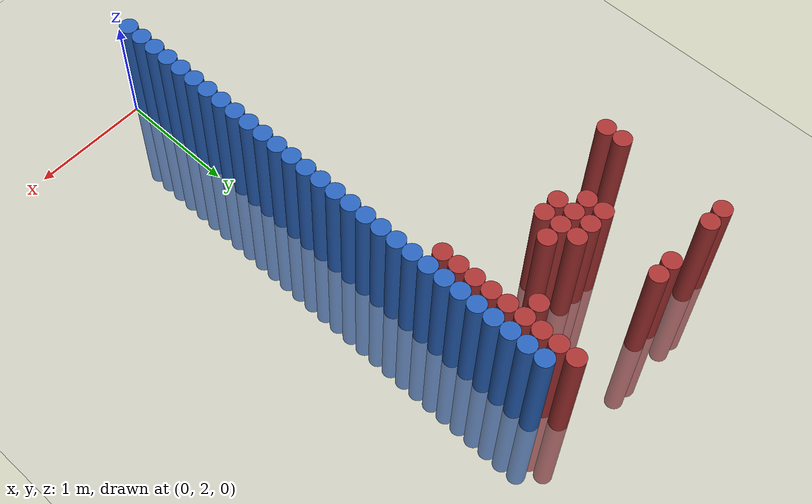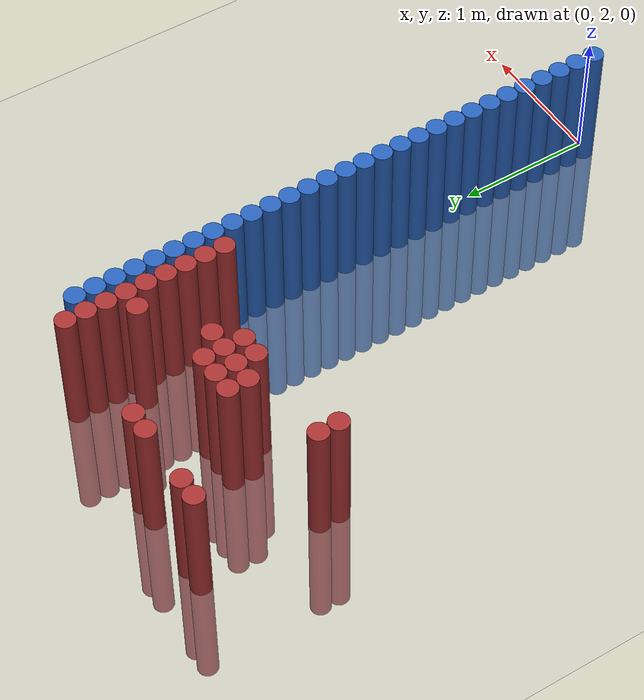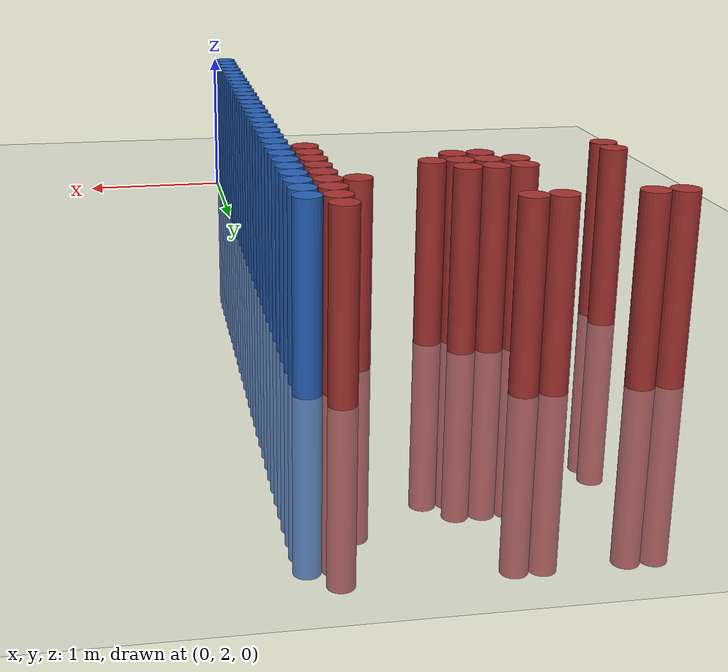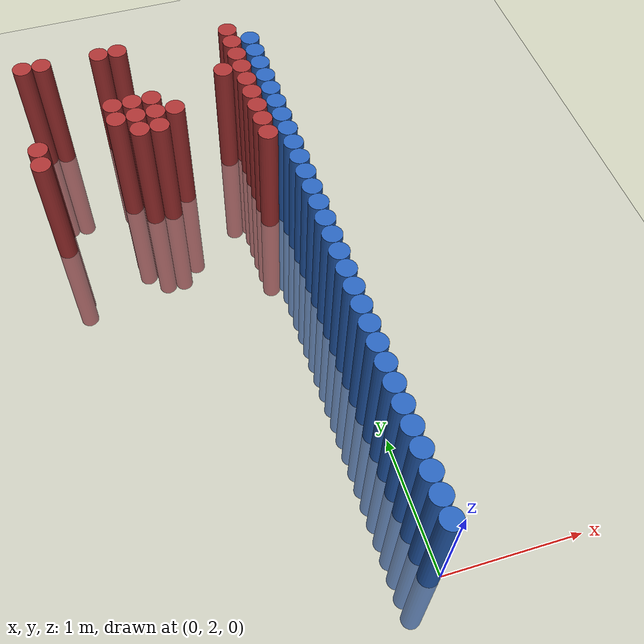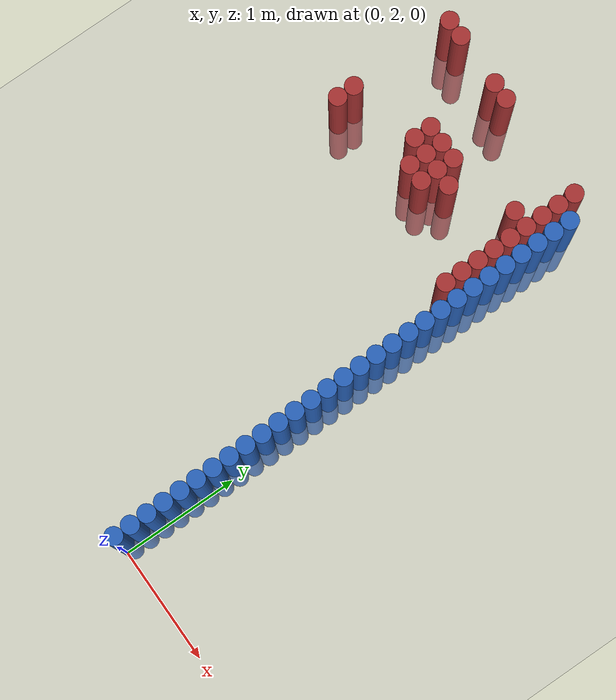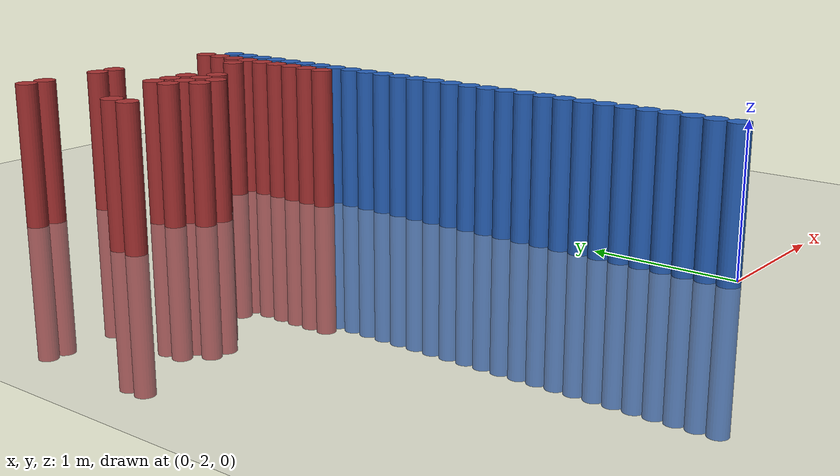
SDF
<sdf version="1.6">
 <world name="default">
  <model name="ground_plane">
   <static>1</static>
   <link name="link">
    <collision name="collision">
     <geometry><plane><normal>0 0 1</normal><size>100 100</size></plane></geometry>
     <surface><friction><ode><mu>100</mu><mu2>50</mu2></ode></friction></surface>
    </collision>
    <visual name="visual">
     <cast_shadows>0</cast_shadows>
     <geometry><plane><normal>0 0 1</normal><size>100 100</size></plane></geometry>
     <material>
      <script><uri>file://media/materials/scripts/gazebo.material</uri><name>Gazebo/Grey</name></script>
     </material>
    </visual>
   </link>
  </model>
  <model name="unit_cylinder_54">
   <static>1</static>
   <pose>-0.075000 2.025000 0.000000 0.000000 0.000000 0.000000</pose>
   <link name="link">
    <inertial>
     <mass>1</mass>
     <inertia><ixx>0.145833</ixx><ixy>0</ixy><ixz>0</ixz><iyy>0.145833</iyy><iyz>0</iyz><izz>0.125</izz></inertia>
    </inertial>
    <collision name="collision">
     <geometry><cylinder><radius>0.075000</radius><length>2</length></cylinder></geometry>
    </collision>
    <visual name="visual">
     <geometry><cylinder><radius>0.075000</radius><length>2</length></cylinder></geometry>
     <material>
      <ambient>0.152000 0.379000 0.720000 1</ambient>
      <diffuse>0.152000 0.379000 0.720000 1</diffuse>
     </material>
     <material>
      <script><name>Gazebo/Grey</name><uri>file://media/materials/scripts/gazebo.material</uri></script>
     </material>
    </visual>
   </link>
  </model>
  <model name="unit_cylinder_56">
   <static>1</static>
   <pose>-0.075000 2.175000 0.000000 0.000000 0.000000 0.000000</pose>
   <link name="link">
    <inertial>
     <mass>1</mass>
     <inertia><ixx>0.145833</ixx><ixy>0</ixy><ixz>0</ixz><iyy>0.145833</iyy><iyz>0</iyz><izz>0.125</izz></inertia>
    </inertial>
    <collision name="collision">
     <geometry><cylinder><radius>0.075000</radius><length>2</length></cylinder></geometry>
    </collision>
    <visual name="visual">
     <geometry><cylinder><radius>0.075000</radius><length>2</length></cylinder></geometry>
     <material>
      <ambient>0.152000 0.379000 0.720000 1</ambient>
      <diffuse>0.152000 0.379000 0.720000 1</diffuse>
     </material>
     <material>
      <script><name>Gazebo/Grey</name><uri>file://media/materials/scripts/gazebo.material</uri></script>
     </material>
    </visual>
   </link>
  </model>
  <model name="unit_cylinder_58">
   <static>1</static>
   <pose>-0.075000 2.325000 0.000000 0.000000 0.000000 0.000000</pose>
   <link name="link">
    <inertial>
     <mass>1</mass>
     <inertia><ixx>0.145833</ixx><ixy>0</ixy><ixz>0</ixz><iyy>0.145833</iyy><iyz>0</iyz><izz>0.125</izz></inertia>
    </inertial>
    <collision name="collision">
     <geometry><cylinder><radius>0.075000</radius><length>2</length></cylinder></geometry>
    </collision>
    <visual name="visual">
     <geometry><cylinder><radius>0.075000</radius><length>2</length></cylinder></geometry>
     <material>
      <ambient>0.152000 0.379000 0.720000 1</ambient>
      <diffuse>0.152000 0.379000 0.720000 1</diffuse>
     </material>
     <material>
      <script><name>Gazebo/Grey</name><uri>file://media/materials/scripts/gazebo.material</uri></script>
     </material>
    </visual>
   </link>
  </model>
  <model name="unit_cylinder_60">
   <static>1</static>
   <pose>-0.075000 2.475000 0.000000 0.000000 0.000000 0.000000</pose>
   <link name="link">
    <inertial>
     <mass>1</mass>
     <inertia><ixx>0.145833</ixx><ixy>0</ixy><ixz>0</ixz><iyy>0.145833</iyy><iyz>0</iyz><izz>0.125</izz></inertia>
    </inertial>
    <collision name="collision">
     <geometry><cylinder><radius>0.075000</radius><length>2</length></cylinder></geometry>
    </collision>
    <visual name="visual">
     <geometry><cylinder><radius>0.075000</radius><length>2</length></cylinder></geometry>
     <material>
      <ambient>0.152000 0.379000 0.720000 1</ambient>
      <diffuse>0.152000 0.379000 0.720000 1</diffuse>
     </material>
     <material>
      <script><name>Gazebo/Grey</name><uri>file://media/materials/scripts/gazebo.material</uri></script>
     </material>
    </visual>
   </link>
  </model>
  <model name="unit_cylinder_62">
   <static>1</static>
   <pose>-0.075000 2.625000 0.000000 0.000000 0.000000 0.000000</pose>
   <link name="link">
    <inertial>
     <mass>1</mass>
     <inertia><ixx>0.145833</ixx><ixy>0</ixy><ixz>0</ixz><iyy>0.145833</iyy><iyz>0</iyz><izz>0.125</izz></inertia>
    </inertial>
    <collision name="collision">
     <geometry><cylinder><radius>0.075000</radius><length>2</length></cylinder></geometry>
    </collision>
    <visual name="visual">
     <geometry><cylinder><radius>0.075000</radius><length>2</length></cylinder></geometry>
     <material>
      <ambient>0.152000 0.379000 0.720000 1</ambient>
      <diffuse>0.152000 0.379000 0.720000 1</diffuse>
     </material>
     <material>
      <script><name>Gazebo/Grey</name><uri>file://media/materials/scripts/gazebo.material</uri></script>
     </material>
    </visual>
   </link>
  </model>
  <model name="unit_cylinder_64">
   <static>1</static>
   <pose>-0.075000 2.775000 0.000000 0.000000 0.000000 0.000000</pose>
   <link name="link">
    <inertial>
     <mass>1</mass>
     <inertia><ixx>0.145833</ixx><ixy>0</ixy><ixz>0</ixz><iyy>0.145833</iyy><iyz>0</iyz><izz>0.125</izz></inertia>
    </inertial>
    <collision name="collision">
     <geometry><cylinder><radius>0.075000</radius><length>2</length></cylinder></geometry>
    </collision>
    <visual name="visual">
     <geometry><cylinder><radius>0.075000</radius><length>2</length></cylinder></geometry>
     <material>
      <ambient>0.152000 0.379000 0.720000 1</ambient>
      <diffuse>0.152000 0.379000 0.720000 1</diffuse>
     </material>
     <material>
      <script><name>Gazebo/Grey</name><uri>file://media/materials/scripts/gazebo.material</uri></script>
     </material>
    </visual>
   </link>
  </model>
  <model name="unit_cylinder_66">
   <static>1</static>
   <pose>-0.075000 2.925000 0.000000 0.000000 0.000000 0.000000</pose>
   <link name="link">
    <inertial>
     <mass>1</mass>
     <inertia><ixx>0.145833</ixx><ixy>0</ixy><ixz>0</ixz><iyy>0.145833</iyy><iyz>0</iyz><izz>0.125</izz></inertia>
    </inertial>
    <collision name="collision">
     <geometry><cylinder><radius>0.075000</radius><length>2</length></cylinder></geometry>
    </collision>
    <visual name="visual">
     <geometry><cylinder><radius>0.075000</radius><length>2</length></cylinder></geometry>
     <material>
      <ambient>0.152000 0.379000 0.720000 1</ambient>
      <diffuse>0.152000 0.379000 0.720000 1</diffuse>
     </material>
     <material>
      <script><name>Gazebo/Grey</name><uri>file://media/materials/scripts/gazebo.material</uri></script>
     </material>
    </visual>
   </link>
  </model>
  <model name="unit_cylinder_68">
   <static>1</static>
   <pose>-0.075000 3.075000 0.000000 0.000000 0.000000 0.000000</pose>
   <link name="link">
    <inertial>
     <mass>1</mass>
     <inertia><ixx>0.145833</ixx><ixy>0</ixy><ixz>0</ixz><iyy>0.145833</iyy><iyz>0</iyz><izz>0.125</izz></inertia>
    </inertial>
    <collision name="collision">
     <geometry><cylinder><radius>0.075000</radius><length>2</length></cylinder></geometry>
    </collision>
    <visual name="visual">
     <geometry><cylinder><radius>0.075000</radius><length>2</length></cylinder></geometry>
     <material>
      <ambient>0.152000 0.379000 0.720000 1</ambient>
      <diffuse>0.152000 0.379000 0.720000 1</diffuse>
     </material>
     <material>
      <script><name>Gazebo/Grey</name><uri>file://media/materials/scripts/gazebo.material</uri></script>
     </material>
    </visual>
   </link>
  </model>
  <model name="unit_cylinder_70">
   <static>1</static>
   <pose>-0.075000 3.225000 0.000000 0.000000 0.000000 0.000000</pose>
   <link name="link">
    <inertial>
     <mass>1</mass>
     <inertia><ixx>0.145833</ixx><ixy>0</ixy><ixz>0</ixz><iyy>0.145833</iyy><iyz>0</iyz><izz>0.125</izz></inertia>
    </inertial>
    <collision name="collision">
     <geometry><cylinder><radius>0.075000</radius><length>2</length></cylinder></geometry>
    </collision>
    <visual name="visual">
     <geometry><cylinder><radius>0.075000</radius><length>2</length></cylinder></geometry>
     <material>
      <ambient>0.152000 0.379000 0.720000 1</ambient>
      <diffuse>0.152000 0.379000 0.720000 1</diffuse>
     </material>
     <material>
      <script><name>Gazebo/Grey</name><uri>file://media/materials/scripts/gazebo.material</uri></script>
     </material>
    </visual>
   </link>
  </model>
  <model name="unit_cylinder_72">
   <static>1</static>
   <pose>-0.075000 3.375000 0.000000 0.000000 0.000000 0.000000</pose>
   <link name="link">
    <inertial>
     <mass>1</mass>
     <inertia><ixx>0.145833</ixx><ixy>0</ixy><ixz>0</ixz><iyy>0.145833</iyy><iyz>0</iyz><izz>0.125</izz></inertia>
    </inertial>
    <collision name="collision">
     <geometry><cylinder><radius>0.075000</radius><length>2</length></cylinder></geometry>
    </collision>
    <visual name="visual">
     <geometry><cylinder><radius>0.075000</radius><length>2</length></cylinder></geometry>
     <material>
      <ambient>0.152000 0.379000 0.720000 1</ambient>
      <diffuse>0.152000 0.379000 0.720000 1</diffuse>
     </material>
     <material>
      <script><name>Gazebo/Grey</name><uri>file://media/materials/scripts/gazebo.material</uri></script>
     </material>
    </visual>
   </link>
  </model>
  <model name="unit_cylinder_74">
   <static>1</static>
   <pose>-0.075000 3.525000 0.000000 0.000000 0.000000 0.000000</pose>
   <link name="link">
    <inertial>
     <mass>1</mass>
     <inertia><ixx>0.145833</ixx><ixy>0</ixy><ixz>0</ixz><iyy>0.145833</iyy><iyz>0</iyz><izz>0.125</izz></inertia>
    </inertial>
    <collision name="collision">
     <geometry><cylinder><radius>0.075000</radius><length>2</length></cylinder></geometry>
    </collision>
    <visual name="visual">
     <geometry><cylinder><radius>0.075000</radius><length>2</length></cylinder></geometry>
     <material>
      <ambient>0.152000 0.379000 0.720000 1</ambient>
      <diffuse>0.152000 0.379000 0.720000 1</diffuse>
     </material>
     <material>
      <script><name>Gazebo/Grey</name><uri>file://media/materials/scripts/gazebo.material</uri></script>
     </material>
    </visual>
   </link>
  </model>
  <model name="unit_cylinder_76">
   <static>1</static>
   <pose>-0.075000 3.675000 0.000000 0.000000 0.000000 0.000000</pose>
   <link name="link">
    <inertial>
     <mass>1</mass>
     <inertia><ixx>0.145833</ixx><ixy>0</ixy><ixz>0</ixz><iyy>0.145833</iyy><iyz>0</iyz><izz>0.125</izz></inertia>
    </inertial>
    <collision name="collision">
     <geometry><cylinder><radius>0.075000</radius><length>2</length></cylinder></geometry>
    </collision>
    <visual name="visual">
     <geometry><cylinder><radius>0.075000</radius><length>2</length></cylinder></geometry>
     <material>
      <ambient>0.152000 0.379000 0.720000 1</ambient>
      <diffuse>0.152000 0.379000 0.720000 1</diffuse>
     </material>
     <material>
      <script><name>Gazebo/Grey</name><uri>file://media/materials/scripts/gazebo.material</uri></script>
     </material>
    </visual>
   </link>
  </model>
  <model name="unit_cylinder_78">
   <static>1</static>
   <pose>-0.075000 3.825000 0.000000 0.000000 0.000000 0.000000</pose>
   <link name="link">
    <inertial>
     <mass>1</mass>
     <inertia><ixx>0.145833</ixx><ixy>0</ixy><ixz>0</ixz><iyy>0.145833</iyy><iyz>0</iyz><izz>0.125</izz></inertia>
    </inertial>
    <collision name="collision">
     <geometry><cylinder><radius>0.075000</radius><length>2</length></cylinder></geometry>
    </collision>
    <visual name="visual">
     <geometry><cylinder><radius>0.075000</radius><length>2</length></cylinder></geometry>
     <material>
      <ambient>0.152000 0.379000 0.720000 1</ambient>
      <diffuse>0.152000 0.379000 0.720000 1</diffuse>
     </material>
     <material>
      <script><name>Gazebo/Grey</name><uri>file://media/materials/scripts/gazebo.material</uri></script>
     </material>
    </visual>
   </link>
  </model>
  <model name="unit_cylinder_80">
   <static>1</static>
   <pose>-0.075000 3.975000 0.000000 0.000000 0.000000 0.000000</pose>
   <link name="link">
    <inertial>
     <mass>1</mass>
     <inertia><ixx>0.145833</ixx><ixy>0</ixy><ixz>0</ixz><iyy>0.145833</iyy><iyz>0</iyz><izz>0.125</izz></inertia>
    </inertial>
    <collision name="collision">
     <geometry><cylinder><radius>0.075000</radius><length>2</length></cylinder></geometry>
    </collision>
    <visual name="visual">
     <geometry><cylinder><radius>0.075000</radius><length>2</length></cylinder></geometry>
     <material>
      <ambient>0.152000 0.379000 0.720000 1</ambient>
      <diffuse>0.152000 0.379000 0.720000 1</diffuse>
     </material>
     <material>
      <script><name>Gazebo/Grey</name><uri>file://media/materials/scripts/gazebo.material</uri></script>
     </material>
    </visual>
   </link>
  </model>
  <model name="unit_cylinder_82">
   <static>1</static>
   <pose>-0.075000 4.125000 0.000000 0.000000 0.000000 0.000000</pose>
   <link name="link">
    <inertial>
     <mass>1</mass>
     <inertia><ixx>0.145833</ixx><ixy>0</ixy><ixz>0</ixz><iyy>0.145833</iyy><iyz>0</iyz><izz>0.125</izz></inertia>
    </inertial>
    <collision name="collision">
     <geometry><cylinder><radius>0.075000</radius><length>2</length></cylinder></geometry>
    </collision>
    <visual name="visual">
     <geometry><cylinder><radius>0.075000</radius><length>2</length></cylinder></geometry>
     <material>
      <ambient>0.152000 0.379000 0.720000 1</ambient>
      <diffuse>0.152000 0.379000 0.720000 1</diffuse>
     </material>
     <material>
      <script><name>Gazebo/Grey</name><uri>file://media/materials/scripts/gazebo.material</uri></script>
     </material>
    </visual>
   </link>
  </model>
  <model name="unit_cylinder_84">
   <static>1</static>
   <pose>-0.075000 4.275000 0.000000 0.000000 0.000000 0.000000</pose>
   <link name="link">
    <inertial>
     <mass>1</mass>
     <inertia><ixx>0.145833</ixx><ixy>0</ixy><ixz>0</ixz><iyy>0.145833</iyy><iyz>0</iyz><izz>0.125</izz></inertia>
    </inertial>
    <collision name="collision">
     <geometry><cylinder><radius>0.075000</radius><length>2</length></cylinder></geometry>
    </collision>
    <visual name="visual">
     <geometry><cylinder><radius>0.075000</radius><length>2</length></cylinder></geometry>
     <material>
      <ambient>0.152000 0.379000 0.720000 1</ambient>
      <diffuse>0.152000 0.379000 0.720000 1</diffuse>
     </material>
     <material>
      <script><name>Gazebo/Grey</name><uri>file://media/materials/scripts/gazebo.material</uri></script>
     </material>
    </visual>
   </link>
  </model>
  <model name="unit_cylinder_86">
   <static>1</static>
   <pose>-0.075000 4.425000 0.000000 0.000000 0.000000 0.000000</pose>
   <link name="link">
    <inertial>
     <mass>1</mass>
     <inertia><ixx>0.145833</ixx><ixy>0</ixy><ixz>0</ixz><iyy>0.145833</iyy><iyz>0</iyz><izz>0.125</izz></inertia>
    </inertial>
    <collision name="collision">
     <geometry><cylinder><radius>0.075000</radius><length>2</length></cylinder></geometry>
    </collision>
    <visual name="visual">
     <geometry><cylinder><radius>0.075000</radius><length>2</length></cylinder></geometry>
     <material>
      <ambient>0.152000 0.379000 0.720000 1</ambient>
      <diffuse>0.152000 0.379000 0.720000 1</diffuse>
     </material>
     <material>
      <script><name>Gazebo/Grey</name><uri>file://media/materials/scripts/gazebo.material</uri></script>
     </material>
    </visual>
   </link>
  </model>
  <model name="unit_cylinder_88">
   <static>1</static>
   <pose>-0.075000 4.575000 0.000000 0.000000 0.000000 0.000000</pose>
   <link name="link">
    <inertial>
     <mass>1</mass>
     <inertia><ixx>0.145833</ixx><ixy>0</ixy><ixz>0</ixz><iyy>0.145833</iyy><iyz>0</iyz><izz>0.125</izz></inertia>
    </inertial>
    <collision name="collision">
     <geometry><cylinder><radius>0.075000</radius><length>2</length></cylinder></geometry>
    </collision>
    <visual name="visual">
     <geometry><cylinder><radius>0.075000</radius><length>2</length></cylinder></geometry>
     <material>
      <ambient>0.152000 0.379000 0.720000 1</ambient>
      <diffuse>0.152000 0.379000 0.720000 1</diffuse>
     </material>
     <material>
      <script><name>Gazebo/Grey</name><uri>file://media/materials/scripts/gazebo.material</uri></script>
     </material>
    </visual>
   </link>
  </model>
  <model name="unit_cylinder_90">
   <static>1</static>
   <pose>-0.075000 4.725000 0.000000 0.000000 0.000000 0.000000</pose>
   <link name="link">
    <inertial>
     <mass>1</mass>
     <inertia><ixx>0.145833</ixx><ixy>0</ixy><ixz>0</ixz><iyy>0.145833</iyy><iyz>0</iyz><izz>0.125</izz></inertia>
    </inertial>
    <collision name="collision">
     <geometry><cylinder><radius>0.075000</radius><length>2</length></cylinder></geometry>
    </collision>
    <visual name="visual">
     <geometry><cylinder><radius>0.075000</radius><length>2</length></cylinder></geometry>
     <material>
      <ambient>0.152000 0.379000 0.720000 1</ambient>
      <diffuse>0.152000 0.379000 0.720000 1</diffuse>
     </material>
     <material>
      <script><name>Gazebo/Grey</name><uri>file://media/materials/scripts/gazebo.material</uri></script>
     </material>
    </visual>
   </link>
  </model>
  <model name="unit_cylinder_92">
   <static>1</static>
   <pose>-0.075000 4.875000 0.000000 0.000000 0.000000 0.000000</pose>
   <link name="link">
    <inertial>
     <mass>1</mass>
     <inertia><ixx>0.145833</ixx><ixy>0</ixy><ixz>0</ixz><iyy>0.145833</iyy><iyz>0</iyz><izz>0.125</izz></inertia>
    </inertial>
    <collision name="collision">
     <geometry><cylinder><radius>0.075000</radius><length>2</length></cylinder></geometry>
    </collision>
    <visual name="visual">
     <geometry><cylinder><radius>0.075000</radius><length>2</length></cylinder></geometry>
     <material>
      <ambient>0.152000 0.379000 0.720000 1</ambient>
      <diffuse>0.152000 0.379000 0.720000 1</diffuse>
     </material>
     <material>
      <script><name>Gazebo/Grey</name><uri>file://media/materials/scripts/gazebo.material</uri></script>
     </material>
    </visual>
   </link>
  </model>
  <model name="unit_cylinder_94">
   <static>1</static>
   <pose>-0.075000 5.025000 0.000000 0.000000 0.000000 0.000000</pose>
   <link name="link">
    <inertial>
     <mass>1</mass>
     <inertia><ixx>0.145833</ixx><ixy>0</ixy><ixz>0</ixz><iyy>0.145833</iyy><iyz>0</iyz><izz>0.125</izz></inertia>
    </inertial>
    <collision name="collision">
     <geometry><cylinder><radius>0.075000</radius><length>2</length></cylinder></geometry>
    </collision>
    <visual name="visual">
     <geometry><cylinder><radius>0.075000</radius><length>2</length></cylinder></geometry>
     <material>
      <ambient>0.152000 0.379000 0.720000 1</ambient>
      <diffuse>0.152000 0.379000 0.720000 1</diffuse>
     </material>
     <material>
      <script><name>Gazebo/Grey</name><uri>file://media/materials/scripts/gazebo.material</uri></script>
     </material>
    </visual>
   </link>
  </model>
  <model name="unit_cylinder_208">
   <static>1</static>
   <pose>-1.875000 5.325000 0.000000 0.000000 0.000000 0.000000</pose>
   <link name="link">
    <inertial>
     <mass>1</mass>
     <inertia><ixx>0.145833</ixx><ixy>0</ixy><ixz>0</ixz><iyy>0.145833</iyy><iyz>0</iyz><izz>0.125</izz></inertia>
    </inertial>
    <collision name="collision">
     <geometry><cylinder><radius>0.075000</radius><length>2</length></cylinder></geometry>
    </collision>
    <visual name="visual">
     <geometry><cylinder><radius>0.075000</radius><length>2</length></cylinder></geometry>
     <material>
      <ambient>0.648000 0.192000 0.192000 1</ambient>
      <diffuse>0.648000 0.192000 0.192000 1</diffuse>
     </material>
     <material>
      <script><name>Gazebo/Grey</name><uri>file://media/materials/scripts/gazebo.material</uri></script>
     </material>
    </visual>
   </link>
  </model>
  <model name="unit_cylinder_209">
   <static>1</static>
   <pose>-1.875000 5.475000 0.000000 0.000000 0.000000 0.000000</pose>
   <link name="link">
    <inertial>
     <mass>1</mass>
     <inertia><ixx>0.145833</ixx><ixy>0</ixy><ixz>0</ixz><iyy>0.145833</iyy><iyz>0</iyz><izz>0.125</izz></inertia>
    </inertial>
    <collision name="collision">
     <geometry><cylinder><radius>0.075000</radius><length>2</length></cylinder></geometry>
    </collision>
    <visual name="visual">
     <geometry><cylinder><radius>0.075000</radius><length>2</length></cylinder></geometry>
     <material>
      <ambient>0.648000 0.192000 0.192000 1</ambient>
      <diffuse>0.648000 0.192000 0.192000 1</diffuse>
     </material>
     <material>
      <script><name>Gazebo/Grey</name><uri>file://media/materials/scripts/gazebo.material</uri></script>
     </material>
    </visual>
   </link>
  </model>
  <model name="unit_cylinder_210">
   <static>1</static>
   <pose>-1.875000 6.375000 0.000000 0.000000 0.000000 0.000000</pose>
   <link name="link">
    <inertial>
     <mass>1</mass>
     <inertia><ixx>0.145833</ixx><ixy>0</ixy><ixz>0</ixz><iyy>0.145833</iyy><iyz>0</iyz><izz>0.125</izz></inertia>
    </inertial>
    <collision name="collision">
     <geometry><cylinder><radius>0.075000</radius><length>2</length></cylinder></geometry>
    </collision>
    <visual name="visual">
     <geometry><cylinder><radius>0.075000</radius><length>2</length></cylinder></geometry>
     <material>
      <ambient>0.648000 0.192000 0.192000 1</ambient>
      <diffuse>0.648000 0.192000 0.192000 1</diffuse>
     </material>
     <material>
      <script><name>Gazebo/Grey</name><uri>file://media/materials/scripts/gazebo.material</uri></script>
     </material>
    </visual>
   </link>
  </model>
  <model name="unit_cylinder_215">
   <static>1</static>
   <pose>-1.725000 6.375000 0.000000 0.000000 0.000000 0.000000</pose>
   <link name="link">
    <inertial>
     <mass>1</mass>
     <inertia><ixx>0.145833</ixx><ixy>0</ixy><ixz>0</ixz><iyy>0.145833</iyy><iyz>0</iyz><izz>0.125</izz></inertia>
    </inertial>
    <collision name="collision">
     <geometry><cylinder><radius>0.075000</radius><length>2</length></cylinder></geometry>
    </collision>
    <visual name="visual">
     <geometry><cylinder><radius>0.075000</radius><length>2</length></cylinder></geometry>
     <material>
      <ambient>0.648000 0.192000 0.192000 1</ambient>
      <diffuse>0.648000 0.192000 0.192000 1</diffuse>
     </material>
     <material>
      <script><name>Gazebo/Grey</name><uri>file://media/materials/scripts/gazebo.material</uri></script>
     </material>
    </visual>
   </link>
  </model>
  <model name="unit_cylinder_226">
   <static>1</static>
   <pose>-1.275000 5.625000 0.000000 0.000000 0.000000 0.000000</pose>
   <link name="link">
    <inertial>
     <mass>1</mass>
     <inertia><ixx>0.145833</ixx><ixy>0</ixy><ixz>0</ixz><iyy>0.145833</iyy><iyz>0</iyz><izz>0.125</izz></inertia>
    </inertial>
    <collision name="collision">
     <geometry><cylinder><radius>0.075000</radius><length>2</length></cylinder></geometry>
    </collision>
    <visual name="visual">
     <geometry><cylinder><radius>0.075000</radius><length>2</length></cylinder></geometry>
     <material>
      <ambient>0.648000 0.192000 0.192000 1</ambient>
      <diffuse>0.648000 0.192000 0.192000 1</diffuse>
     </material>
     <material>
      <script><name>Gazebo/Grey</name><uri>file://media/materials/scripts/gazebo.material</uri></script>
     </material>
    </visual>
   </link>
  </model>
  <model name="unit_cylinder_227">
   <static>1</static>
   <pose>-1.275000 5.775000 0.000000 0.000000 0.000000 0.000000</pose>
   <link name="link">
    <inertial>
     <mass>1</mass>
     <inertia><ixx>0.145833</ixx><ixy>0</ixy><ixz>0</ixz><iyy>0.145833</iyy><iyz>0</iyz><izz>0.125</izz></inertia>
    </inertial>
    <collision name="collision">
     <geometry><cylinder><radius>0.075000</radius><length>2</length></cylinder></geometry>
    </collision>
    <visual name="visual">
     <geometry><cylinder><radius>0.075000</radius><length>2</length></cylinder></geometry>
     <material>
      <ambient>0.648000 0.192000 0.192000 1</ambient>
      <diffuse>0.648000 0.192000 0.192000 1</diffuse>
     </material>
     <material>
      <script><name>Gazebo/Grey</name><uri>file://media/materials/scripts/gazebo.material</uri></script>
     </material>
    </visual>
   </link>
  </model>
  <model name="unit_cylinder_228">
   <static>1</static>
   <pose>-1.275000 6.375000 0.000000 0.000000 0.000000 0.000000</pose>
   <link name="link">
    <inertial>
     <mass>1</mass>
     <inertia><ixx>0.145833</ixx><ixy>0</ixy><ixz>0</ixz><iyy>0.145833</iyy><iyz>0</iyz><izz>0.125</izz></inertia>
    </inertial>
    <collision name="collision">
     <geometry><cylinder><radius>0.075000</radius><length>2</length></cylinder></geometry>
    </collision>
    <visual name="visual">
     <geometry><cylinder><radius>0.075000</radius><length>2</length></cylinder></geometry>
     <material>
      <ambient>0.648000 0.192000 0.192000 1</ambient>
      <diffuse>0.648000 0.192000 0.192000 1</diffuse>
     </material>
     <material>
      <script><name>Gazebo/Grey</name><uri>file://media/materials/scripts/gazebo.material</uri></script>
     </material>
    </visual>
   </link>
  </model>
  <model name="unit_cylinder_237">
   <static>1</static>
   <pose>-1.125000 5.475000 0.000000 0.000000 0.000000 0.000000</pose>
   <link name="link">
    <inertial>
     <mass>1</mass>
     <inertia><ixx>0.145833</ixx><ixy>0</ixy><ixz>0</ixz><iyy>0.145833</iyy><iyz>0</iyz><izz>0.125</izz></inertia>
    </inertial>
    <collision name="collision">
     <geometry><cylinder><radius>0.075000</radius><length>2</length></cylinder></geometry>
    </collision>
    <visual name="visual">
     <geometry><cylinder><radius>0.075000</radius><length>2</length></cylinder></geometry>
     <material>
      <ambient>0.648000 0.192000 0.192000 1</ambient>
      <diffuse>0.648000 0.192000 0.192000 1</diffuse>
     </material>
     <material>
      <script><name>Gazebo/Grey</name><uri>file://media/materials/scripts/gazebo.material</uri></script>
     </material>
    </visual>
   </link>
  </model>
  <model name="unit_cylinder_238">
   <static>1</static>
   <pose>-1.125000 5.625000 0.000000 0.000000 0.000000 0.000000</pose>
   <link name="link">
    <inertial>
     <mass>1</mass>
     <inertia><ixx>0.145833</ixx><ixy>0</ixy><ixz>0</ixz><iyy>0.145833</iyy><iyz>0</iyz><izz>0.125</izz></inertia>
    </inertial>
    <collision name="collision">
     <geometry><cylinder><radius>0.075000</radius><length>2</length></cylinder></geometry>
    </collision>
    <visual name="visual">
     <geometry><cylinder><radius>0.075000</radius><length>2</length></cylinder></geometry>
     <material>
      <ambient>0.648000 0.192000 0.192000 1</ambient>
      <diffuse>0.648000 0.192000 0.192000 1</diffuse>
     </material>
     <material>
      <script><name>Gazebo/Grey</name><uri>file://media/materials/scripts/gazebo.material</uri></script>
     </material>
    </visual>
   </link>
  </model>
  <model name="unit_cylinder_239">
   <static>1</static>
   <pose>-1.125000 5.775000 0.000000 0.000000 0.000000 0.000000</pose>
   <link name="link">
    <inertial>
     <mass>1</mass>
     <inertia><ixx>0.145833</ixx><ixy>0</ixy><ixz>0</ixz><iyy>0.145833</iyy><iyz>0</iyz><izz>0.125</izz></inertia>
    </inertial>
    <collision name="collision">
     <geometry><cylinder><radius>0.075000</radius><length>2</length></cylinder></geometry>
    </collision>
    <visual name="visual">
     <geometry><cylinder><radius>0.075000</radius><length>2</length></cylinder></geometry>
     <material>
      <ambient>0.648000 0.192000 0.192000 1</ambient>
      <diffuse>0.648000 0.192000 0.192000 1</diffuse>
     </material>
     <material>
      <script><name>Gazebo/Grey</name><uri>file://media/materials/scripts/gazebo.material</uri></script>
     </material>
    </visual>
   </link>
  </model>
  <model name="unit_cylinder_240">
   <static>1</static>
   <pose>-1.125000 6.375000 0.000000 0.000000 0.000000 0.000000</pose>
   <link name="link">
    <inertial>
     <mass>1</mass>
     <inertia><ixx>0.145833</ixx><ixy>0</ixy><ixz>0</ixz><iyy>0.145833</iyy><iyz>0</iyz><izz>0.125</izz></inertia>
    </inertial>
    <collision name="collision">
     <geometry><cylinder><radius>0.075000</radius><length>2</length></cylinder></geometry>
    </collision>
    <visual name="visual">
     <geometry><cylinder><radius>0.075000</radius><length>2</length></cylinder></geometry>
     <material>
      <ambient>0.648000 0.192000 0.192000 1</ambient>
      <diffuse>0.648000 0.192000 0.192000 1</diffuse>
     </material>
     <material>
      <script><name>Gazebo/Grey</name><uri>file://media/materials/scripts/gazebo.material</uri></script>
     </material>
    </visual>
   </link>
  </model>
  <model name="unit_cylinder_246">
   <static>1</static>
   <pose>-0.975000 5.475000 0.000000 0.000000 0.000000 0.000000</pose>
   <link name="link">
    <inertial>
     <mass>1</mass>
     <inertia><ixx>0.145833</ixx><ixy>0</ixy><ixz>0</ixz><iyy>0.145833</iyy><iyz>0</iyz><izz>0.125</izz></inertia>
    </inertial>
    <collision name="collision">
     <geometry><cylinder><radius>0.075000</radius><length>2</length></cylinder></geometry>
    </collision>
    <visual name="visual">
     <geometry><cylinder><radius>0.075000</radius><length>2</length></cylinder></geometry>
     <material>
      <ambient>0.648000 0.192000 0.192000 1</ambient>
      <diffuse>0.648000 0.192000 0.192000 1</diffuse>
     </material>
     <material>
      <script><name>Gazebo/Grey</name><uri>file://media/materials/scripts/gazebo.material</uri></script>
     </material>
    </visual>
   </link>
  </model>
  <model name="unit_cylinder_247">
   <static>1</static>
   <pose>-0.975000 5.625000 0.000000 0.000000 0.000000 0.000000</pose>
   <link name="link">
    <inertial>
     <mass>1</mass>
     <inertia><ixx>0.145833</ixx><ixy>0</ixy><ixz>0</ixz><iyy>0.145833</iyy><iyz>0</iyz><izz>0.125</izz></inertia>
    </inertial>
    <collision name="collision">
     <geometry><cylinder><radius>0.075000</radius><length>2</length></cylinder></geometry>
    </collision>
    <visual name="visual">
     <geometry><cylinder><radius>0.075000</radius><length>2</length></cylinder></geometry>
     <material>
      <ambient>0.648000 0.192000 0.192000 1</ambient>
      <diffuse>0.648000 0.192000 0.192000 1</diffuse>
     </material>
     <material>
      <script><name>Gazebo/Grey</name><uri>file://media/materials/scripts/gazebo.material</uri></script>
     </material>
    </visual>
   </link>
  </model>
  <model name="unit_cylinder_248">
   <static>1</static>
   <pose>-0.975000 5.775000 0.000000 0.000000 0.000000 0.000000</pose>
   <link name="link">
    <inertial>
     <mass>1</mass>
     <inertia><ixx>0.145833</ixx><ixy>0</ixy><ixz>0</ixz><iyy>0.145833</iyy><iyz>0</iyz><izz>0.125</izz></inertia>
    </inertial>
    <collision name="collision">
     <geometry><cylinder><radius>0.075000</radius><length>2</length></cylinder></geometry>
    </collision>
    <visual name="visual">
     <geometry><cylinder><radius>0.075000</radius><length>2</length></cylinder></geometry>
     <material>
      <ambient>0.648000 0.192000 0.192000 1</ambient>
      <diffuse>0.648000 0.192000 0.192000 1</diffuse>
     </material>
     <material>
      <script><name>Gazebo/Grey</name><uri>file://media/materials/scripts/gazebo.material</uri></script>
     </material>
    </visual>
   </link>
  </model>
  <model name="unit_cylinder_250">
   <static>1</static>
   <pose>-0.825000 5.625000 0.000000 0.000000 0.000000 0.000000</pose>
   <link name="link">
    <inertial>
     <mass>1</mass>
     <inertia><ixx>0.145833</ixx><ixy>0</ixy><ixz>0</ixz><iyy>0.145833</iyy><iyz>0</iyz><izz>0.125</izz></inertia>
    </inertial>
    <collision name="collision">
     <geometry><cylinder><radius>0.075000</radius><length>2</length></cylinder></geometry>
    </collision>
    <visual name="visual">
     <geometry><cylinder><radius>0.075000</radius><length>2</length></cylinder></geometry>
     <material>
      <ambient>0.648000 0.192000 0.192000 1</ambient>
      <diffuse>0.648000 0.192000 0.192000 1</diffuse>
     </material>
     <material>
      <script><name>Gazebo/Grey</name><uri>file://media/materials/scripts/gazebo.material</uri></script>
     </material>
    </visual>
   </link>
  </model>
  <model name="unit_cylinder_261">
   <static>1</static>
   <pose>-0.375000 5.925000 0.000000 0.000000 0.000000 0.000000</pose>
   <link name="link">
    <inertial>
     <mass>1</mass>
     <inertia><ixx>0.145833</ixx><ixy>0</ixy><ixz>0</ixz><iyy>0.145833</iyy><iyz>0</iyz><izz>0.125</izz></inertia>
    </inertial>
    <collision name="collision">
     <geometry><cylinder><radius>0.075000</radius><length>2</length></cylinder></geometry>
    </collision>
    <visual name="visual">
     <geometry><cylinder><radius>0.075000</radius><length>2</length></cylinder></geometry>
     <material>
      <ambient>0.648000 0.192000 0.192000 1</ambient>
      <diffuse>0.648000 0.192000 0.192000 1</diffuse>
     </material>
     <material>
      <script><name>Gazebo/Grey</name><uri>file://media/materials/scripts/gazebo.material</uri></script>
     </material>
    </visual>
   </link>
  </model>
  <model name="unit_cylinder_271">
   <static>1</static>
   <pose>-0.225000 5.175000 0.000000 0.000000 0.000000 0.000000</pose>
   <link name="link">
    <inertial>
     <mass>1</mass>
     <inertia><ixx>0.145833</ixx><ixy>0</ixy><ixz>0</ixz><iyy>0.145833</iyy><iyz>0</iyz><izz>0.125</izz></inertia>
    </inertial>
    <collision name="collision">
     <geometry><cylinder><radius>0.075000</radius><length>2</length></cylinder></geometry>
    </collision>
    <visual name="visual">
     <geometry><cylinder><radius>0.075000</radius><length>2</length></cylinder></geometry>
     <material>
      <ambient>0.648000 0.192000 0.192000 1</ambient>
      <diffuse>0.648000 0.192000 0.192000 1</diffuse>
     </material>
     <material>
      <script><name>Gazebo/Grey</name><uri>file://media/materials/scripts/gazebo.material</uri></script>
     </material>
    </visual>
   </link>
  </model>
  <model name="unit_cylinder_272">
   <static>1</static>
   <pose>-0.225000 5.325000 0.000000 0.000000 0.000000 0.000000</pose>
   <link name="link">
    <inertial>
     <mass>1</mass>
     <inertia><ixx>0.145833</ixx><ixy>0</ixy><ixz>0</ixz><iyy>0.145833</iyy><iyz>0</iyz><izz>0.125</izz></inertia>
    </inertial>
    <collision name="collision">
     <geometry><cylinder><radius>0.075000</radius><length>2</length></cylinder></geometry>
    </collision>
    <visual name="visual">
     <geometry><cylinder><radius>0.075000</radius><length>2</length></cylinder></geometry>
     <material>
      <ambient>0.648000 0.192000 0.192000 1</ambient>
      <diffuse>0.648000 0.192000 0.192000 1</diffuse>
     </material>
     <material>
      <script><name>Gazebo/Grey</name><uri>file://media/materials/scripts/gazebo.material</uri></script>
     </material>
    </visual>
   </link>
  </model>
  <model name="unit_cylinder_273">
   <static>1</static>
   <pose>-0.225000 5.475000 0.000000 0.000000 0.000000 0.000000</pose>
   <link name="link">
    <inertial>
     <mass>1</mass>
     <inertia><ixx>0.145833</ixx><ixy>0</ixy><ixz>0</ixz><iyy>0.145833</iyy><iyz>0</iyz><izz>0.125</izz></inertia>
    </inertial>
    <collision name="collision">
     <geometry><cylinder><radius>0.075000</radius><length>2</length></cylinder></geometry>
    </collision>
    <visual name="visual">
     <geometry><cylinder><radius>0.075000</radius><length>2</length></cylinder></geometry>
     <material>
      <ambient>0.648000 0.192000 0.192000 1</ambient>
      <diffuse>0.648000 0.192000 0.192000 1</diffuse>
     </material>
     <material>
      <script><name>Gazebo/Grey</name><uri>file://media/materials/scripts/gazebo.material</uri></script>
     </material>
    </visual>
   </link>
  </model>
  <model name="unit_cylinder_274">
   <static>1</static>
   <pose>-0.225000 5.625000 0.000000 0.000000 0.000000 0.000000</pose>
   <link name="link">
    <inertial>
     <mass>1</mass>
     <inertia><ixx>0.145833</ixx><ixy>0</ixy><ixz>0</ixz><iyy>0.145833</iyy><iyz>0</iyz><izz>0.125</izz></inertia>
    </inertial>
    <collision name="collision">
     <geometry><cylinder><radius>0.075000</radius><length>2</length></cylinder></geometry>
    </collision>
    <visual name="visual">
     <geometry><cylinder><radius>0.075000</radius><length>2</length></cylinder></geometry>
     <material>
      <ambient>0.648000 0.192000 0.192000 1</ambient>
      <diffuse>0.648000 0.192000 0.192000 1</diffuse>
     </material>
     <material>
      <script><name>Gazebo/Grey</name><uri>file://media/materials/scripts/gazebo.material</uri></script>
     </material>
    </visual>
   </link>
  </model>
  <model name="unit_cylinder_275">
   <static>1</static>
   <pose>-0.225000 5.775000 0.000000 0.000000 0.000000 0.000000</pose>
   <link name="link">
    <inertial>
     <mass>1</mass>
     <inertia><ixx>0.145833</ixx><ixy>0</ixy><ixz>0</ixz><iyy>0.145833</iyy><iyz>0</iyz><izz>0.125</izz></inertia>
    </inertial>
    <collision name="collision">
     <geometry><cylinder><radius>0.075000</radius><length>2</length></cylinder></geometry>
    </collision>
    <visual name="visual">
     <geometry><cylinder><radius>0.075000</radius><length>2</length></cylinder></geometry>
     <material>
      <ambient>0.648000 0.192000 0.192000 1</ambient>
      <diffuse>0.648000 0.192000 0.192000 1</diffuse>
     </material>
     <material>
      <script><name>Gazebo/Grey</name><uri>file://media/materials/scripts/gazebo.material</uri></script>
     </material>
    </visual>
   </link>
  </model>
  <model name="unit_cylinder_276">
   <static>1</static>
   <pose>-0.225000 5.925000 0.000000 0.000000 0.000000 0.000000</pose>
   <link name="link">
    <inertial>
     <mass>1</mass>
     <inertia><ixx>0.145833</ixx><ixy>0</ixy><ixz>0</ixz><iyy>0.145833</iyy><iyz>0</iyz><izz>0.125</izz></inertia>
    </inertial>
    <collision name="collision">
     <geometry><cylinder><radius>0.075000</radius><length>2</length></cylinder></geometry>
    </collision>
    <visual name="visual">
     <geometry><cylinder><radius>0.075000</radius><length>2</length></cylinder></geometry>
     <material>
      <ambient>0.648000 0.192000 0.192000 1</ambient>
      <diffuse>0.648000 0.192000 0.192000 1</diffuse>
     </material>
     <material>
      <script><name>Gazebo/Grey</name><uri>file://media/materials/scripts/gazebo.material</uri></script>
     </material>
    </visual>
   </link>
  </model>
  <model name="unit_cylinder_277">
   <static>1</static>
   <pose>-0.225000 6.075000 0.000000 0.000000 0.000000 0.000000</pose>
   <link name="link">
    <inertial>
     <mass>1</mass>
     <inertia><ixx>0.145833</ixx><ixy>0</ixy><ixz>0</ixz><iyy>0.145833</iyy><iyz>0</iyz><izz>0.125</izz></inertia>
    </inertial>
    <collision name="collision">
     <geometry><cylinder><radius>0.075000</radius><length>2</length></cylinder></geometry>
    </collision>
    <visual name="visual">
     <geometry><cylinder><radius>0.075000</radius><length>2</length></cylinder></geometry>
     <material>
      <ambient>0.648000 0.192000 0.192000 1</ambient>
      <diffuse>0.648000 0.192000 0.192000 1</diffuse>
     </material>
     <material>
      <script><name>Gazebo/Grey</name><uri>file://media/materials/scripts/gazebo.material</uri></script>
     </material>
    </visual>
   </link>
  </model>
  <model name="unit_cylinder_278">
   <static>1</static>
   <pose>-0.225000 6.225000 0.000000 0.000000 0.000000 0.000000</pose>
   <link name="link">
    <inertial>
     <mass>1</mass>
     <inertia><ixx>0.145833</ixx><ixy>0</ixy><ixz>0</ixz><iyy>0.145833</iyy><iyz>0</iyz><izz>0.125</izz></inertia>
    </inertial>
    <collision name="collision">
     <geometry><cylinder><radius>0.075000</radius><length>2</length></cylinder></geometry>
    </collision>
    <visual name="visual">
     <geometry><cylinder><radius>0.075000</radius><length>2</length></cylinder></geometry>
     <material>
      <ambient>0.648000 0.192000 0.192000 1</ambient>
      <diffuse>0.648000 0.192000 0.192000 1</diffuse>
     </material>
     <material>
      <script><name>Gazebo/Grey</name><uri>file://media/materials/scripts/gazebo.material</uri></script>
     </material>
    </visual>
   </link>
  </model>
  <model name="unit_cylinder_279">
   <static>1</static>
   <pose>-0.225000 6.375000 0.000000 0.000000 0.000000 0.000000</pose>
   <link name="link">
    <inertial>
     <mass>1</mass>
     <inertia><ixx>0.145833</ixx><ixy>0</ixy><ixz>0</ixz><iyy>0.145833</iyy><iyz>0</iyz><izz>0.125</izz></inertia>
    </inertial>
    <collision name="collision">
     <geometry><cylinder><radius>0.075000</radius><length>2</length></cylinder></geometry>
    </collision>
    <visual name="visual">
     <geometry><cylinder><radius>0.075000</radius><length>2</length></cylinder></geometry>
     <material>
      <ambient>0.648000 0.192000 0.192000 1</ambient>
      <diffuse>0.648000 0.192000 0.192000 1</diffuse>
     </material>
     <material>
      <script><name>Gazebo/Grey</name><uri>file://media/materials/scripts/gazebo.material</uri></script>
     </material>
    </visual>
   </link>
  </model>
  <model name="unit_cylinder_294">
   <static>1</static>
   <pose>-0.075000 5.175000 0.000000 0.000000 0.000000 0.000000</pose>
   <link name="link">
    <inertial>
     <mass>1</mass>
     <inertia><ixx>0.145833</ixx><ixy>0</ixy><ixz>0</ixz><iyy>0.145833</iyy><iyz>0</iyz><izz>0.125</izz></inertia>
    </inertial>
    <collision name="collision">
     <geometry><cylinder><radius>0.075000</radius><length>2</length></cylinder></geometry>
    </collision>
    <visual name="visual">
     <geometry><cylinder><radius>0.075000</radius><length>2</length></cylinder></geometry>
     <material>
      <ambient>0.152000 0.379000 0.720000 1</ambient>
      <diffuse>0.152000 0.379000 0.720000 1</diffuse>
     </material>
     <material>
      <script><name>Gazebo/Grey</name><uri>file://media/materials/scripts/gazebo.material</uri></script>
     </material>
    </visual>
   </link>
  </model>
  <model name="unit_cylinder_295">
   <static>1</static>
   <pose>-0.075000 5.325000 0.000000 0.000000 0.000000 0.000000</pose>
   <link name="link">
    <inertial>
     <mass>1</mass>
     <inertia><ixx>0.145833</ixx><ixy>0</ixy><ixz>0</ixz><iyy>0.145833</iyy><iyz>0</iyz><izz>0.125</izz></inertia>
    </inertial>
    <collision name="collision">
     <geometry><cylinder><radius>0.075000</radius><length>2</length></cylinder></geometry>
    </collision>
    <visual name="visual">
     <geometry><cylinder><radius>0.075000</radius><length>2</length></cylinder></geometry>
     <material>
      <ambient>0.152000 0.379000 0.720000 1</ambient>
      <diffuse>0.152000 0.379000 0.720000 1</diffuse>
     </material>
     <material>
      <script><name>Gazebo/Grey</name><uri>file://media/materials/scripts/gazebo.material</uri></script>
     </material>
    </visual>
   </link>
  </model>
  <model name="unit_cylinder_296">
   <static>1</static>
   <pose>-0.075000 5.475000 0.000000 0.000000 0.000000 0.000000</pose>
   <link name="link">
    <inertial>
     <mass>1</mass>
     <inertia><ixx>0.145833</ixx><ixy>0</ixy><ixz>0</ixz><iyy>0.145833</iyy><iyz>0</iyz><izz>0.125</izz></inertia>
    </inertial>
    <collision name="collision">
     <geometry><cylinder><radius>0.075000</radius><length>2</length></cylinder></geometry>
    </collision>
    <visual name="visual">
     <geometry><cylinder><radius>0.075000</radius><length>2</length></cylinder></geometry>
     <material>
      <ambient>0.152000 0.379000 0.720000 1</ambient>
      <diffuse>0.152000 0.379000 0.720000 1</diffuse>
     </material>
     <material>
      <script><name>Gazebo/Grey</name><uri>file://media/materials/scripts/gazebo.material</uri></script>
     </material>
    </visual>
   </link>
  </model>
  <model name="unit_cylinder_297">
   <static>1</static>
   <pose>-0.075000 5.625000 0.000000 0.000000 0.000000 0.000000</pose>
   <link name="link">
    <inertial>
     <mass>1</mass>
     <inertia><ixx>0.145833</ixx><ixy>0</ixy><ixz>0</ixz><iyy>0.145833</iyy><iyz>0</iyz><izz>0.125</izz></inertia>
    </inertial>
    <collision name="collision">
     <geometry><cylinder><radius>0.075000</radius><length>2</length></cylinder></geometry>
    </collision>
    <visual name="visual">
     <geometry><cylinder><radius>0.075000</radius><length>2</length></cylinder></geometry>
     <material>
      <ambient>0.152000 0.379000 0.720000 1</ambient>
      <diffuse>0.152000 0.379000 0.720000 1</diffuse>
     </material>
     <material>
      <script><name>Gazebo/Grey</name><uri>file://media/materials/scripts/gazebo.material</uri></script>
     </material>
    </visual>
   </link>
  </model>
  <model name="unit_cylinder_298">
   <static>1</static>
   <pose>-0.075000 5.775000 0.000000 0.000000 0.000000 0.000000</pose>
   <link name="link">
    <inertial>
     <mass>1</mass>
     <inertia><ixx>0.145833</ixx><ixy>0</ixy><ixz>0</ixz><iyy>0.145833</iyy><iyz>0</iyz><izz>0.125</izz></inertia>
    </inertial>
    <collision name="collision">
     <geometry><cylinder><radius>0.075000</radius><length>2</length></cylinder></geometry>
    </collision>
    <visual name="visual">
     <geometry><cylinder><radius>0.075000</radius><length>2</length></cylinder></geometry>
     <material>
      <ambient>0.152000 0.379000 0.720000 1</ambient>
      <diffuse>0.152000 0.379000 0.720000 1</diffuse>
     </material>
     <material>
      <script><name>Gazebo/Grey</name><uri>file://media/materials/scripts/gazebo.material</uri></script>
     </material>
    </visual>
   </link>
  </model>
  <model name="unit_cylinder_299">
   <static>1</static>
   <pose>-0.075000 5.925000 0.000000 0.000000 0.000000 0.000000</pose>
   <link name="link">
    <inertial>
     <mass>1</mass>
     <inertia><ixx>0.145833</ixx><ixy>0</ixy><ixz>0</ixz><iyy>0.145833</iyy><iyz>0</iyz><izz>0.125</izz></inertia>
    </inertial>
    <collision name="collision">
     <geometry><cylinder><radius>0.075000</radius><length>2</length></cylinder></geometry>
    </collision>
    <visual name="visual">
     <geometry><cylinder><radius>0.075000</radius><length>2</length></cylinder></geometry>
     <material>
      <ambient>0.152000 0.379000 0.720000 1</ambient>
      <diffuse>0.152000 0.379000 0.720000 1</diffuse>
     </material>
     <material>
      <script><name>Gazebo/Grey</name><uri>file://media/materials/scripts/gazebo.material</uri></script>
     </material>
    </visual>
   </link>
  </model>
  <model name="unit_cylinder_300">
   <static>1</static>
   <pose>-0.075000 6.075000 0.000000 0.000000 0.000000 0.000000</pose>
   <link name="link">
    <inertial>
     <mass>1</mass>
     <inertia><ixx>0.145833</ixx><ixy>0</ixy><ixz>0</ixz><iyy>0.145833</iyy><iyz>0</iyz><izz>0.125</izz></inertia>
    </inertial>
    <collision name="collision">
     <geometry><cylinder><radius>0.075000</radius><length>2</length></cylinder></geometry>
    </collision>
    <visual name="visual">
     <geometry><cylinder><radius>0.075000</radius><length>2</length></cylinder></geometry>
     <material>
      <ambient>0.152000 0.379000 0.720000 1</ambient>
      <diffuse>0.152000 0.379000 0.720000 1</diffuse>
     </material>
     <material>
      <script><name>Gazebo/Grey</name><uri>file://media/materials/scripts/gazebo.material</uri></script>
     </material>
    </visual>
   </link>
  </model>
  <model name="unit_cylinder_301">
   <static>1</static>
   <pose>-0.075000 6.225000 0.000000 0.000000 0.000000 0.000000</pose>
   <link name="link">
    <inertial>
     <mass>1</mass>
     <inertia><ixx>0.145833</ixx><ixy>0</ixy><ixz>0</ixz><iyy>0.145833</iyy><iyz>0</iyz><izz>0.125</izz></inertia>
    </inertial>
    <collision name="collision">
     <geometry><cylinder><radius>0.075000</radius><length>2</length></cylinder></geometry>
    </collision>
    <visual name="visual">
     <geometry><cylinder><radius>0.075000</radius><length>2</length></cylinder></geometry>
     <material>
      <ambient>0.152000 0.379000 0.720000 1</ambient>
      <diffuse>0.152000 0.379000 0.720000 1</diffuse>
     </material>
     <material>
      <script><name>Gazebo/Grey</name><uri>file://media/materials/scripts/gazebo.material</uri></script>
     </material>
    </visual>
   </link>
  </model>
 </world>
</sdf>
